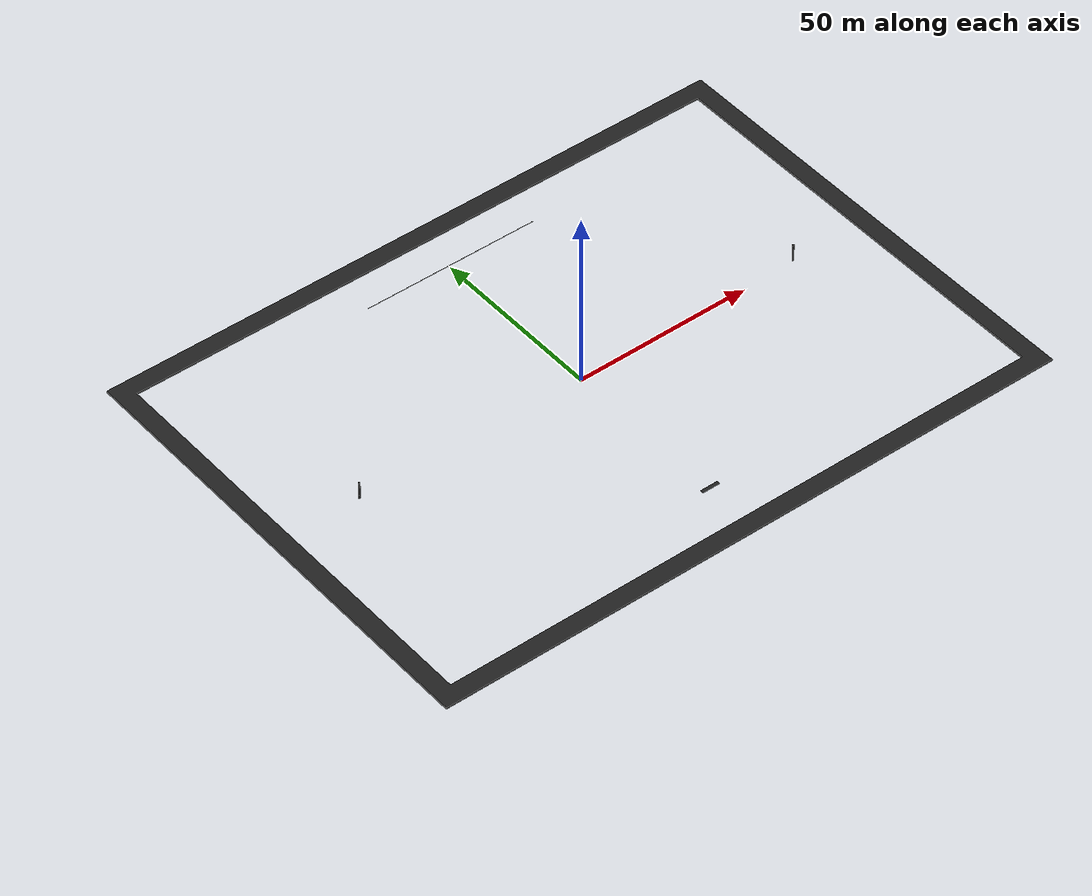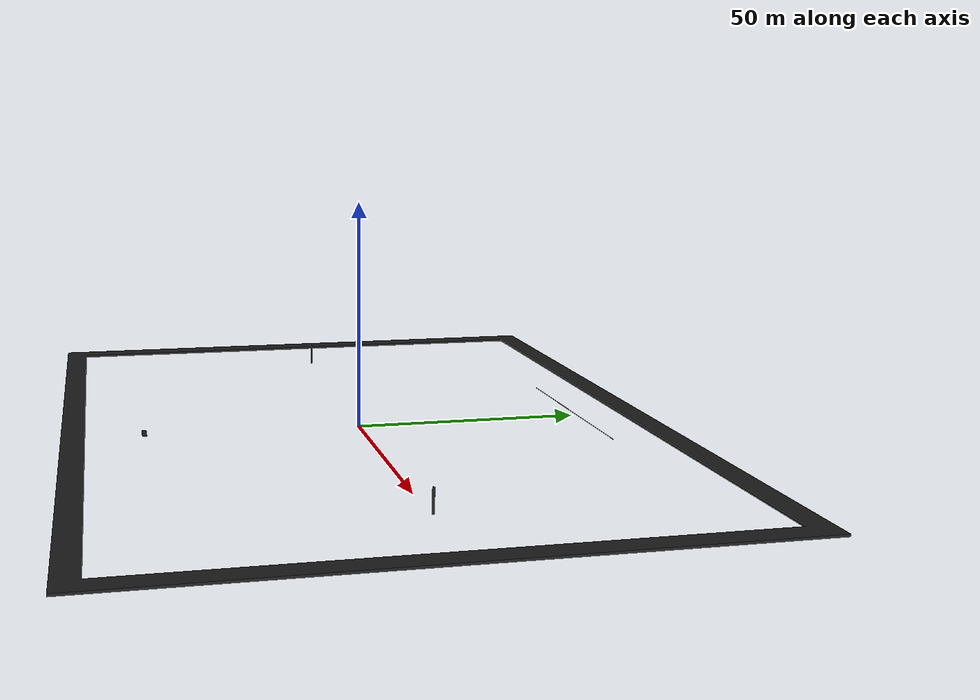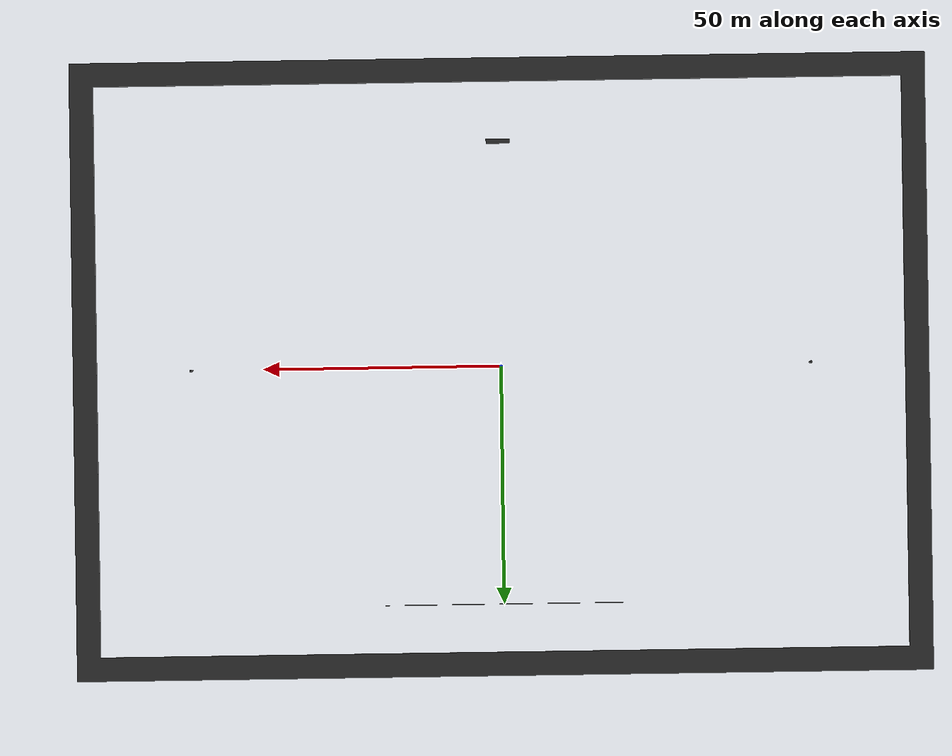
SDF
<?xml version="1.0" ?>
<sdf version="1.6">
  <model name="alan">
    <pose>0 0 1 0 0 0</pose>
    <static>true</static>
    <link name="link">
      <visual name="visual">
        <geometry>
          <mesh>
            <scale>1 1 1</scale>
            <uri>model://alan/meshes/alan_uiha.stl</uri>
          </mesh>
        </geometry>
        <material>
          <script>
            <name>Gazebo/Black</name>
          </script>
        </material>
      </visual>
    </link>
  </model>
</sdf>
